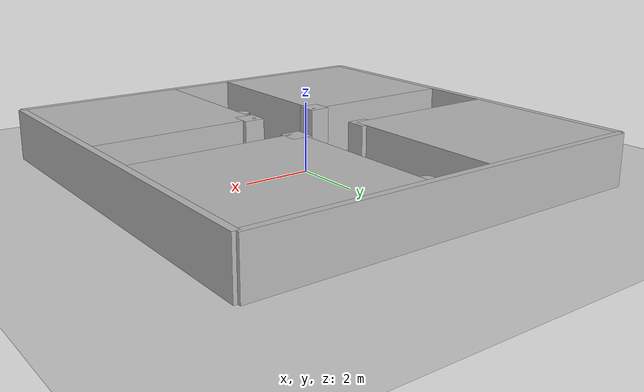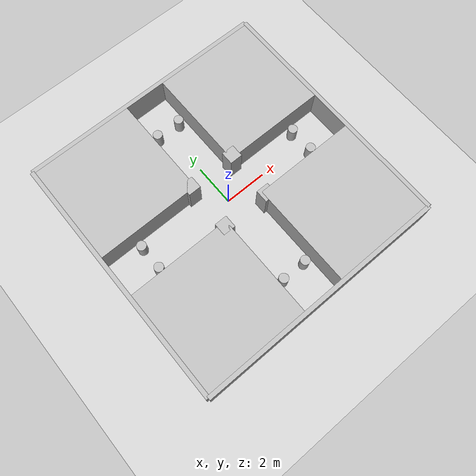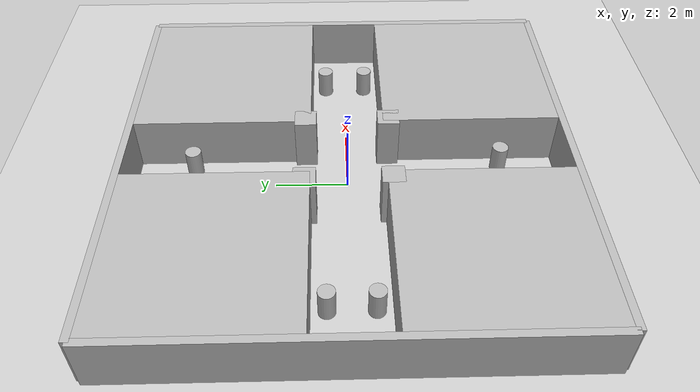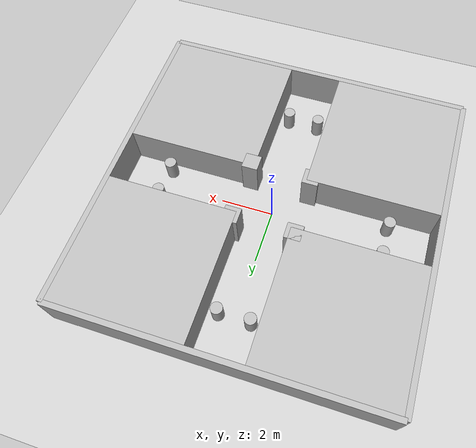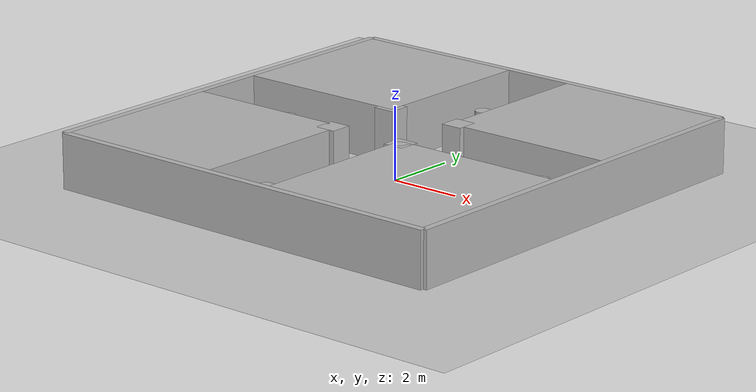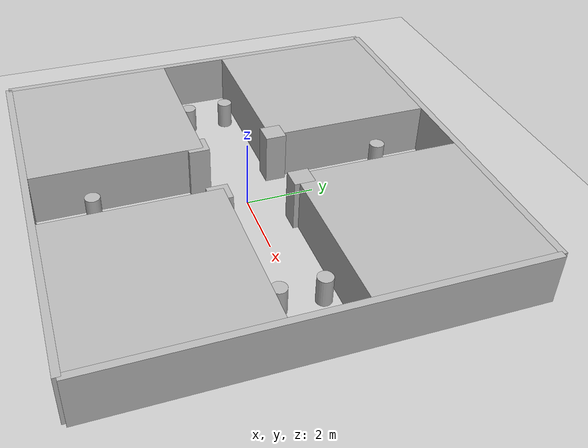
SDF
<?xml version="1.0" ?>
<sdf version="1.6">
<world name="interaction_hub_mini">
  <plugin name='gazebo_ros_state' filename='libgazebo_ros_state.so'>
    <ros>
      <argument>model_states:=model_states_demo</argument>
    </ros>
    <update_rate>1.0</update_rate>
  </plugin>

  <include>
    <uri>model://sun</uri>
  </include>
  <include>
    <uri>model://ground_plane</uri>
  </include>

  <model name="b_north">
    <static>true</static>
    <pose>0.0 6.0 0.75 0 0 0</pose>
    <link name="link">
      <collision name="collision"><geometry><box><size>12.0 0.2 1.5</size></box></geometry></collision>
      <visual name="visual"><geometry><box><size>12.0 0.2 1.5</size></box></geometry></visual>
    </link>
  </model>

  <model name="b_south">
    <static>true</static>
    <pose>0.0 -6.0 0.75 0 0 0</pose>
    <link name="link">
      <collision name="collision"><geometry><box><size>12.0 0.2 1.5</size></box></geometry></collision>
      <visual name="visual"><geometry><box><size>12.0 0.2 1.5</size></box></geometry></visual>
    </link>
  </model>

  <model name="b_east">
    <static>true</static>
    <pose>6.0 0.0 0.75 0 0 0</pose>
    <link name="link">
      <collision name="collision"><geometry><box><size>0.2 12.0 1.5</size></box></geometry></collision>
      <visual name="visual"><geometry><box><size>0.2 12.0 1.5</size></box></geometry></visual>
    </link>
  </model>

  <model name="b_west">
    <static>true</static>
    <pose>-6.0 0.0 0.75 0 0 0</pose>
    <link name="link">
      <collision name="collision"><geometry><box><size>0.2 12.0 1.5</size></box></geometry></collision>
      <visual name="visual"><geometry><box><size>0.2 12.0 1.5</size></box></geometry></visual>
    </link>
  </model>

  <model name="quad_sw">
    <static>true</static>
    <pose>-3.45 -3.45 0.75 0 0 0</pose>
    <link name="link">
      <collision name="collision"><geometry><box><size>4.9 4.9 1.5</size></box></geometry></collision>
      <visual name="visual"><geometry><box><size>4.9 4.9 1.5</size></box></geometry></visual>
    </link>
  </model>

  <model name="quad_nw">
    <static>true</static>
    <pose>-3.45 3.45 0.75 0 0 0</pose>
    <link name="link">
      <collision name="collision"><geometry><box><size>4.9 4.9 1.5</size></box></geometry></collision>
      <visual name="visual"><geometry><box><size>4.9 4.9 1.5</size></box></geometry></visual>
    </link>
  </model>

  <model name="quad_se">
    <static>true</static>
    <pose>3.45 -3.45 0.75 0 0 0</pose>
    <link name="link">
      <collision name="collision"><geometry><box><size>4.9 4.9 1.5</size></box></geometry></collision>
      <visual name="visual"><geometry><box><size>4.9 4.9 1.5</size></box></geometry></visual>
    </link>
  </model>

  <model name="quad_ne">
    <static>true</static>
    <pose>3.45 3.45 0.75 0 0 0</pose>
    <link name="link">
      <collision name="collision"><geometry><box><size>4.9 4.9 1.5</size></box></geometry></collision>
      <visual name="visual"><geometry><box><size>4.9 4.9 1.5</size></box></geometry></visual>
    </link>
  </model>

  <model name="pillar_sw">
    <static>true</static>
    <pose>-1.15 -1.15 0.75 0 0 0</pose>
    <link name="link">
      <collision name="collision"><geometry><box><size>0.6 0.6 1.5</size></box></geometry></collision>
      <visual name="visual"><geometry><box><size>0.6 0.6 1.5</size></box></geometry></visual>
    </link>
  </model>

  <model name="pillar_nw">
    <static>true</static>
    <pose>-1.15 1.15 0.75 0 0 0</pose>
    <link name="link">
      <collision name="collision"><geometry><box><size>0.6 0.6 1.5</size></box></geometry></collision>
      <visual name="visual"><geometry><box><size>0.6 0.6 1.5</size></box></geometry></visual>
    </link>
  </model>

  <model name="pillar_se">
    <static>true</static>
    <pose>1.15 -1.15 0.75 0 0 0</pose>
    <link name="link">
      <collision name="collision"><geometry><box><size>0.6 0.6 1.5</size></box></geometry></collision>
      <visual name="visual"><geometry><box><size>0.6 0.6 1.5</size></box></geometry></visual>
    </link>
  </model>

  <model name="pillar_ne">
    <static>true</static>
    <pose>1.15 1.15 0.75 0 0 0</pose>
    <link name="link">
      <collision name="collision"><geometry><box><size>0.6 0.6 1.5</size></box></geometry></collision>
      <visual name="visual"><geometry><box><size>0.6 0.6 1.5</size></box></geometry></visual>
    </link>
  </model>

  <!-- 动态障碍物 dyn_obs_0~7，默认停在四臂远端，由 obstacle_mover 接管 -->
  <model name="dyn_obs_0">
    <static>true</static>
    <pose>-4.3 -0.6 0.4 0 0 0</pose>
    <link name="link">
      <collision name="collision"><geometry><cylinder><radius>0.22</radius><length>0.8</length></cylinder></geometry></collision>
      <visual name="visual"><geometry><cylinder><radius>0.22</radius><length>0.8</length></cylinder></geometry></visual>
    </link>
  </model>

  <model name="dyn_obs_1">
    <static>true</static>
    <pose>-4.3 0.6 0.4 0 0 0</pose>
    <link name="link">
      <collision name="collision"><geometry><cylinder><radius>0.22</radius><length>0.8</length></cylinder></geometry></collision>
      <visual name="visual"><geometry><cylinder><radius>0.22</radius><length>0.8</length></cylinder></geometry></visual>
    </link>
  </model>

  <model name="dyn_obs_2">
    <static>true</static>
    <pose>4.3 -0.6 0.4 0 0 0</pose>
    <link name="link">
      <collision name="collision"><geometry><cylinder><radius>0.22</radius><length>0.8</length></cylinder></geometry></collision>
      <visual name="visual"><geometry><cylinder><radius>0.22</radius><length>0.8</length></cylinder></geometry></visual>
    </link>
  </model>

  <model name="dyn_obs_3">
    <static>true</static>
    <pose>4.3 0.6 0.4 0 0 0</pose>
    <link name="link">
      <collision name="collision"><geometry><cylinder><radius>0.22</radius><length>0.8</length></cylinder></geometry></collision>
      <visual name="visual"><geometry><cylinder><radius>0.22</radius><length>0.8</length></cylinder></geometry></visual>
    </link>
  </model>

  <model name="dyn_obs_4">
    <static>true</static>
    <pose>-0.6 -4.3 0.4 0 0 0</pose>
    <link name="link">
      <collision name="collision"><geometry><cylinder><radius>0.22</radius><length>0.8</length></cylinder></geometry></collision>
      <visual name="visual"><geometry><cylinder><radius>0.22</radius><length>0.8</length></cylinder></geometry></visual>
    </link>
  </model>

  <model name="dyn_obs_5">
    <static>true</static>
    <pose>0.6 -4.3 0.4 0 0 0</pose>
    <link name="link">
      <collision name="collision"><geometry><cylinder><radius>0.22</radius><length>0.8</length></cylinder></geometry></collision>
      <visual name="visual"><geometry><cylinder><radius>0.22</radius><length>0.8</length></cylinder></geometry></visual>
    </link>
  </model>

  <model name="dyn_obs_6">
    <static>true</static>
    <pose>-0.6 4.3 0.4 0 0 0</pose>
    <link name="link">
      <collision name="collision"><geometry><cylinder><radius>0.22</radius><length>0.8</length></cylinder></geometry></collision>
      <visual name="visual"><geometry><cylinder><radius>0.22</radius><length>0.8</length></cylinder></geometry></visual>
    </link>
  </model>

  <model name="dyn_obs_7">
    <static>true</static>
    <pose>0.6 4.3 0.4 0 0 0</pose>
    <link name="link">
      <collision name="collision"><geometry><cylinder><radius>0.22</radius><length>0.8</length></cylinder></geometry></collision>
      <visual name="visual"><geometry><cylinder><radius>0.22</radius><length>0.8</length></cylinder></geometry></visual>
    </link>
  </model>
</world>
</sdf>
